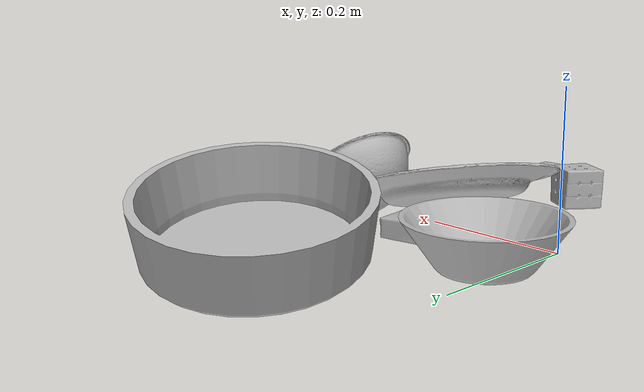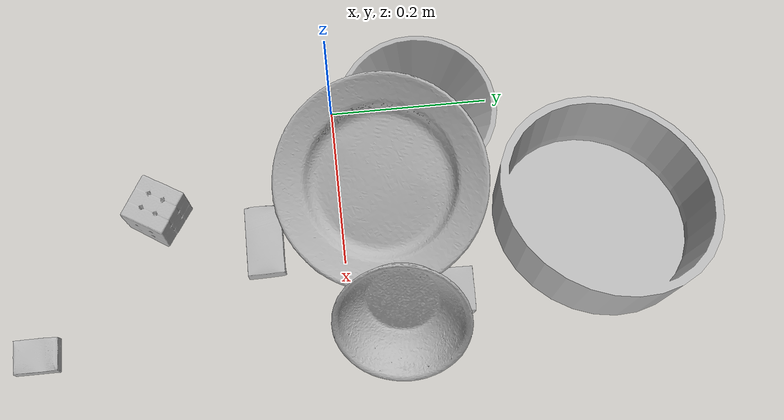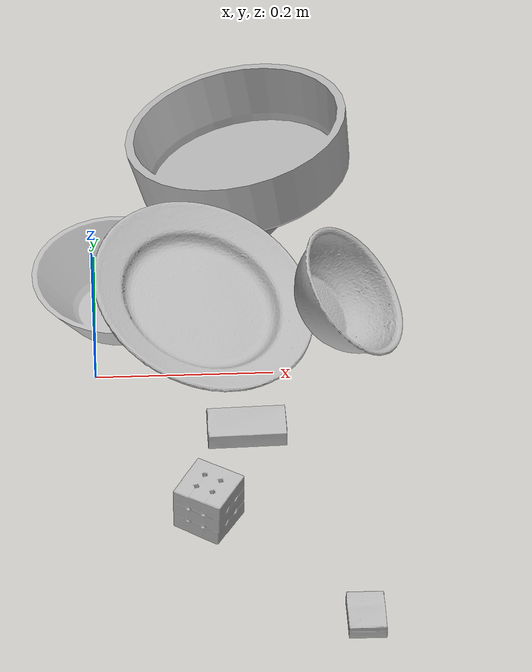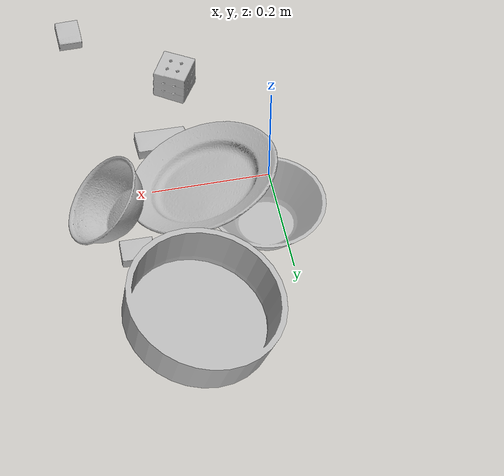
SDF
<sdf version="1.4">
  <world name="default">
    <light name="light1" type="point">
      <pose>0 0 1 0 0 0</pose>
      <diffuse>3 3 3 1</diffuse>
      <specular>3 3 3 1</specular>
    </light>
    <light name="light2" type="point">
      <pose>0 0.5 2 0 0 0</pose>
      <diffuse>1 1 1 1</diffuse>
      <specular>1 1 1 1</specular>
    </light>
    <light name="light3" type="point">
      <pose>0 0.5 2 0 0 0</pose>
      <diffuse>3 3 3 1</diffuse>
      <specular>3 3 3 1</specular>
    </light>
    <scene>
      <ambient>0.7 0.7 0.7</ambient>
    </scene>
    <model name="box1">
      <link name="link_box1">
        <collision name="default">
          <geometry>
            <mesh>
              <uri>model://jenga/collision_meshes/collision.obj</uri>
              <scale>1.0 1.0 1.0</scale>
            </mesh>
          </geometry>
          <surface>
            <friction>
              <ode>
                <mu>0.5</mu>
                <mu2>0.5</mu2>
              </ode>
            </friction>
          <contact>
        <ode>
            <max_vel>0</max_vel>
            <min_depth>0.0001</min_depth>
            <kp>1e8</kp>
        </ode>
    </contact></surface>
        </collision>
        <visual name="default">
          <geometry>
            <mesh>
              <uri>model://jenga/visual_meshes/visual.dae</uri>
              <scale>1.0 1.0 1.0</scale>
            </mesh>
          </geometry>
        </visual>
        <inertial>
          <mass>0.2830650806427002</mass>
          <pose>-2.502855807051674e-07 -0.00010250010382151231 -4.0923401684267446e-05 0.0 -7.34215461761844e-07 0.0</pose>
          <inertia>
            <ixx>7.833097e-05</ixx>
            <iyy>0.0005307686</iyy>
            <izz>0.0005666406</izz>
            <ixy>0</ixy>
            <ixz>0</ixz>
            <iyz>0</iyz>
          </inertia>
        </inertial>
      </link>
      <pose>0.20486803352832794 0.2673817276954651 0.015001553110778332 5.449454630265892e-05 -1.0898548001063777e-05 -2.2236738628154424</pose>
    </model>
    <model name="box11">
      <link name="link_box11">
        <collision name="default">
          <geometry>
            <mesh>
              <uri>model://cracker_box/collision_meshes/collision.obj</uri>
              <scale>0.25 0.25 0.25</scale>
            </mesh>
          </geometry>
          <surface>
            <friction>
              <ode>
                <mu>0.5</mu>
                <mu2>0.5</mu2>
              </ode>
            </friction>
          <contact>
        <ode>
            <max_vel>0</max_vel>
            <min_depth>0.0001</min_depth>
            <kp>1e8</kp>
        </ode>
    </contact></surface>
        </collision>
        <visual name="default">
          <geometry>
            <mesh>
              <uri>model://cracker_box/visual_meshes/visual.dae</uri>
              <scale>0.25 0.25 0.25</scale>
            </mesh>
          </geometry>
        </visual>
        <inertial>
          <mass>0.04137800261378288</mass>
          <pose>0.00023660347505938262 6.358561950037256e-05 -0.0004257383698131889 -0.00031620748486547713 -0.011106488669102847 0.002546795699546287</pose>
          <inertia>
            <ixx>6.577948e-06</ixx>
            <iyy>1.0861484e-05</iyy>
            <izz>1.5500336e-05</izz>
            <ixy>0</ixy>
            <ixz>0</ixz>
            <iyz>0</iyz>
          </inertia>
        </inertial>
      </link>
      <pose>0.27954596281051636 -0.37311097979545593 0.009096027351915836 -0.014050497457375697 -0.005016628183495297 -1.5706496732246304</pose>
    </model>
    <model name="box2">
      <link name="link_box2">
        <collision name="default">
          <geometry>
            <mesh>
              <uri>model://gelatin_box/collision_meshes/collision.obj</uri>
              <scale>1.0 1.0 1.0</scale>
            </mesh>
          </geometry>
          <surface>
            <friction>
              <ode>
                <mu>0.5</mu>
                <mu2>0.5</mu2>
              </ode>
            </friction>
          <contact>
        <ode>
            <max_vel>0</max_vel>
            <min_depth>0.0001</min_depth>
            <kp>1e8</kp>
        </ode>
    </contact></surface>
        </collision>
        <visual name="default">
          <geometry>
            <mesh>
              <uri>model://gelatin_box/visual_meshes/visual.dae</uri>
              <scale>1.0 1.0 1.0</scale>
            </mesh>
          </geometry>
        </visual>
        <inertial>
          <mass>0.22900472581386566</mass>
          <pose>0.000431961816502735 0.00011156871914863586 -0.0003640321083366871 -0.001050372089182411 -0.004755818223717792 0.016440559471606643</pose>
          <inertia>
            <ixx>0.00016165864</ixx>
            <iyy>0.00011547193</iyy>
            <izz>0.00024608054</izz>
            <ixy>0</ixy>
            <ixz>0</ixz>
            <iyz>0</iyz>
          </inertia>
        </inertial>
      </link>
      <pose>0.16000670194625854 0.065250463783741 0.01524477731436491 -0.0003184079470979547 0.0005823621270897739 -1.3685538446908814</pose>
    </model>
    <model name="box21">
      <link name="link_box21">
        <collision name="default">
          <geometry>
            <mesh>
              <uri>model://sugar_box/collision_meshes/collision.obj</uri>
              <scale>0.5 0.5 0.5</scale>
            </mesh>
          </geometry>
          <surface>
            <friction>
              <ode>
                <mu>0.5</mu>
                <mu2>0.5</mu2>
              </ode>
            </friction>
          <contact>
        <ode>
            <max_vel>0</max_vel>
            <min_depth>0.0001</min_depth>
            <kp>1e8</kp>
        </ode>
    </contact></surface>
        </collision>
        <visual name="default">
          <geometry>
            <mesh>
              <uri>model://sugar_box/visual_meshes/visual.dae</uri>
              <scale>0.5 0.5 0.5</scale>
            </mesh>
          </geometry>
        </visual>
        <inertial>
          <mass>0.12271630764007568</mass>
          <pose>0.0005171863595023751 1.924554817378521e-05 -0.00018182404164690524 -0.00040462595111886014 0.0010506636380741379 0.0026153785562511135</pose>
          <inertia>
            <ixx>2.5561721e-05</ixx>
            <iyy>8.262075e-05</iyy>
            <izz>9.890688e-05</izz>
            <ixy>0</ixy>
            <ixz>0</ixz>
            <iyz>0</iyz>
          </inertia>
        </inertial>
      </link>
      <pose>0.16593821346759796 -0.0953076109290123 0.011399302631616592 0.0007745254837839075 -0.023433021466039074 0.00045366707653107503</pose>
    </model>
    <model name="box3">
      <link name="link_box3">
        <collision name="default">
          <geometry>
            <mesh>
              <uri>model://rubiks_cube/collision_meshes/collision.obj</uri>
              <scale>1.0 1.0 1.0</scale>
            </mesh>
          </geometry>
          <surface>
            <friction>
              <ode>
                <mu>0.5</mu>
                <mu2>0.5</mu2>
              </ode>
            </friction>
          <contact>
        <ode>
            <max_vel>0</max_vel>
            <min_depth>0.0001</min_depth>
            <kp>1e8</kp>
        </ode>
    </contact></surface>
        </collision>
        <visual name="default">
          <geometry>
            <mesh>
              <uri>model://rubiks_cube/visual_meshes/visual.dae</uri>
              <scale>1.0 1.0 1.0</scale>
            </mesh>
          </geometry>
        </visual>
        <inertial>
          <mass>0.16665811836719513</mass>
          <pose>2.6721039830590598e-05 5.256966323941015e-05 -7.264316082000732e-06 -0.05467166844566422 -0.0981397083583286 -0.034457090447706985</pose>
          <inertia>
            <ixx>9.20898e-05</ixx>
            <iyy>9.166034e-05</iyy>
            <izz>9.285292e-05</izz>
            <ixy>0</ixy>
            <ixz>0</ixz>
            <iyz>0</iyz>
          </inertia>
        </inertial>
      </link>
      <pose>0.11927889287471771 -0.22285017371177673 0.028678931295871735 -5.337379426298194e-06 -2.2556658126710287e-06 -0.5415808420490438</pose>
    </model>
    <model name="box31">
      <link name="link_box31">
        <collision name="default">
          <geometry>
            <mesh>
              <uri>model://pudding_box/collision_meshes/collision.obj</uri>
              <scale>0.5 0.5 0.5</scale>
            </mesh>
          </geometry>
          <surface>
            <friction>
              <ode>
                <mu>0.5</mu>
                <mu2>0.5</mu2>
              </ode>
            </friction>
          <contact>
        <ode>
            <max_vel>0</max_vel>
            <min_depth>0.0001</min_depth>
            <kp>1e8</kp>
        </ode>
    </contact></surface>
        </collision>
        <visual name="default">
          <geometry>
            <mesh>
              <uri>model://pudding_box/visual_meshes/visual.dae</uri>
              <scale>0.5 0.5 0.5</scale>
            </mesh>
          </geometry>
        </visual>
        <inertial>
          <mass>0.023591291159391403</mass>
          <pose>0.00024474109522998333 0.00040339428232982755 -0.0002594413817860186 0.00521310040348307 -0.006603797312523218 0.020079827030686108</pose>
          <inertia>
            <ixx>6.667184e-06</ixx>
            <iyy>4.4857293e-06</iyy>
            <izz>9.845841e-06</izz>
            <ixy>0</ixy>
            <ixz>0</ixz>
            <iyz>0</iyz>
          </inertia>
        </inertial>
      </link>
      <pose>0.24913759529590607 0.12946997582912445 0.009862903505563736 0.022348668688301834 -0.011391616616890648 1.5294911943852054</pose>
    </model>
    <model name="plate1">
      <link name="link_plate1">
        <collision name="default">
          <geometry>
            <mesh>
              <uri>model://plate/collision_meshes/collision.obj</uri>
              <scale>1.0 1.0 1.0</scale>
            </mesh>
          </geometry>
          <surface>
            <friction>
              <ode>
                <mu>0.5</mu>
                <mu2>0.5</mu2>
              </ode>
            </friction>
          <contact>
        <ode>
            <max_vel>0</max_vel>
            <min_depth>0.0001</min_depth>
            <kp>1e8</kp>
        </ode>
    </contact></surface>
        </collision>
        <visual name="default">
          <geometry>
            <mesh>
              <uri>model://plate/visual_meshes/visual.dae</uri>
              <scale>1.0 1.0 1.0</scale>
            </mesh>
          </geometry>
        </visual>
        <inertial>
          <mass>0.2114637792110443</mass>
          <pose>-0.0006044656038284302 0.0002782588708214462 -0.0010561993112787604 0.002218744002621918 -0.003225513006599694 0.45262307488796183</pose>
          <inertia>
            <ixx>0.0009892316</ixx>
            <iyy>0.0009797702</iyy>
            <izz>0.0019347895</izz>
            <ixy>0</ixy>
            <ixz>0</ixz>
            <iyz>0</iyz>
          </inertia>
        </inertial>
      </link>
      <pose>0.12170776724815369 0.05024607479572296 0.06796178966760635 0.27881521824621736 -0.2024410279326204 1.6524006673287397</pose>
    </model>
    <model name="bowl1">
      <link name="link_bowl1">
        <collision name="default">
          <geometry>
            <mesh>
              <uri>model://bowl_a/collision_meshes/collision.obj</uri>
              <scale>1.0 1.0 1.0</scale>
            </mesh>
          </geometry>
          <surface>
            <friction>
              <ode>
                <mu>0.5</mu>
                <mu2>0.5</mu2>
              </ode>
            </friction>
          <contact>
        <ode>
            <max_vel>0</max_vel>
            <min_depth>0.0001</min_depth>
            <kp>1e8</kp>
        </ode>
    </contact></surface>
        </collision>
        <visual name="default">
          <geometry>
            <mesh>
              <uri>model://bowl_a/visual_meshes/visual.dae</uri>
              <scale>1.0 1.0 1.0</scale>
            </mesh>
          </geometry>
        </visual>
        <inertial>
          <mass>0.48499906063079834</mass>
          <pose>0.00027867438620887697 4.731262743007392e-05 -0.0013765298062935472 -0.0009805334386135593 -0.0010938262367740986 -0.19123808511586568</pose>
          <inertia>
            <ixx>0.0013808149</ixx>
            <iyy>0.0013892918</iyy>
            <izz>0.0024558324</izz>
            <ixy>0</ixy>
            <ixz>0</ixz>
            <iyz>0</iyz>
          </inertia>
        </inertial>
      </link>
      <pose>0.027197234332561493 0.10583965480327606 0.030383126810193062 -1.4421403064548026e-05 3.7684308716548446e-06 1.0104464654441798</pose>
    </model>
    <model name="plate2">
      <link name="link_plate2">
        <collision name="default">
          <geometry>
            <mesh>
              <uri>model://pan_tefal/collision_meshes/collision.obj</uri>
              <scale>1.0 1.0 1.0</scale>
            </mesh>
          </geometry>
          <surface>
            <friction>
              <ode>
                <mu>0.5</mu>
                <mu2>0.5</mu2>
              </ode>
            </friction>
          <contact>
        <ode>
            <max_vel>0</max_vel>
            <min_depth>0.0001</min_depth>
            <kp>1e8</kp>
        </ode>
    </contact></surface>
        </collision>
        <visual name="default">
          <geometry>
            <mesh>
              <uri>model://pan_tefal/visual_meshes/visual.dae</uri>
              <scale>1.0 1.0 1.0</scale>
            </mesh>
          </geometry>
        </visual>
        <inertial>
          <mass>1.510846495628357</mass>
          <pose>-0.00018002149590756744 3.279069278505631e-05 -0.008514934219419956 0.0008190286460061649 -0.00033014112223844094 -0.3318560039733936</pose>
          <inertia>
            <ixx>0.010429303</ixx>
            <iyy>0.010496541</iyy>
            <izz>0.01919834</izz>
            <ixy>0</ixy>
            <ixz>0</ixz>
            <iyz>0</iyz>
          </inertia>
        </inertial>
      </link>
      <pose>0.17673563957214355 0.3085375428199768 0.06367012858390808 -0.17342795723180446 0.15754544784827776 1.6536408224369041</pose>
    </model>
    <model name="bowl2">
      <link name="link_bowl2">
        <collision name="default">
          <geometry>
            <mesh>
              <uri>model://bowl/collision_meshes/collision.obj</uri>
              <scale>1.0 1.0 1.0</scale>
            </mesh>
          </geometry>
          <surface>
            <friction>
              <ode>
                <mu>0.5</mu>
                <mu2>0.5</mu2>
              </ode>
            </friction>
          <contact>
        <ode>
            <max_vel>0</max_vel>
            <min_depth>0.0001</min_depth>
            <kp>1e8</kp>
        </ode>
    </contact></surface>
        </collision>
        <visual name="default">
          <geometry>
            <mesh>
              <uri>model://bowl/visual_meshes/visual.dae</uri>
              <scale>1.0 1.0 1.0</scale>
            </mesh>
          </geometry>
        </visual>
        <inertial>
          <mass>0.12714597582817078</mass>
          <pose>0.0002044505235971883 -0.0010302012087777257 -0.0008042659610509872 -0.015764101160635133 0.01454679544325816 0.7140405339594252</pose>
          <inertia>
            <ixx>0.0002920644</ixx>
            <iyy>0.00028553858</iyy>
            <izz>0.0004913528</izz>
            <ixy>0</ixy>
            <ixz>0</ixz>
            <iyz>0</iyz>
          </inertia>
        </inertial>
      </link>
      <pose>0.2772289216518402 0.06068595126271248 0.052075229585170746 0.7790094003018457 -0.2660400970055868 1.6653192481272991</pose>
    </model>
  <physics type="ode">
      <max_contacts>50</max_contacts>
      <ode>
        <solver>
          <type>quick</type>
          <iters>75</iters>
        </solver>
        <constraints>
          <contact_max_correcting_vel>0</contact_max_correcting_vel>
          <contact_surface_layer>0</contact_surface_layer>
        </constraints>
      </ode>
    </physics></world>
</sdf>
